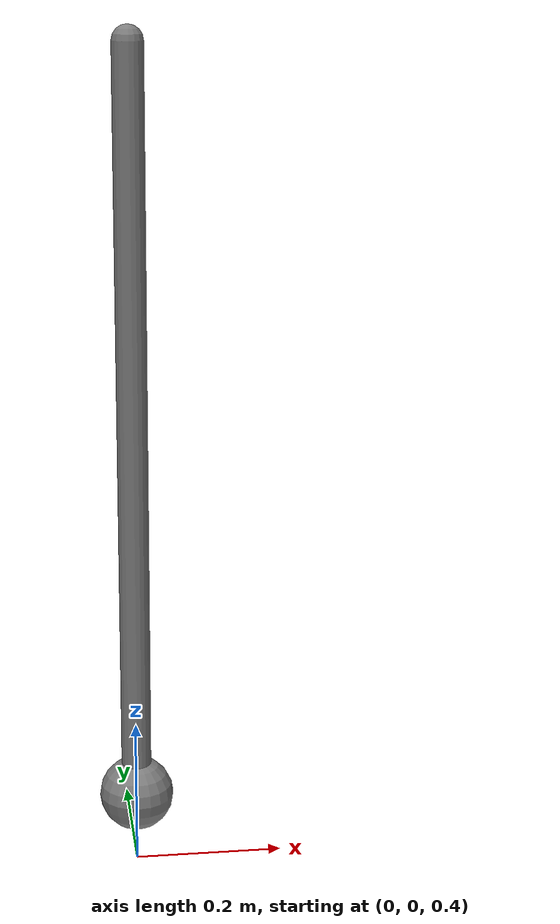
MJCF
<mujoco model="pendulum_scene">
  <include file="pendulum_model.xml"/>

  <statistic center="0 0 0.1" extent="0.8"/>

  <visual>
    <headlight diffuse="0.6 0.6 0.6" ambient="0.3 0.3 0.3" specular="0 0 0"/>
    <rgba haze="0.15 0.25 0.35 1"/>
    <global azimuth="-130" elevation="-20"/>
  </visual>

  <asset>
    <texture type="skybox" builtin="gradient" rgb1="0.3 0.5 0.7" rgb2="0 0 0" width="512" height="3072"/>
    <texture type="2d" name="groundplane" builtin="checker" mark="edge" rgb1="0.2 0.3 0.4" rgb2="0.1 0.2 0.3"
      markrgb="0.8 0.8 0.8" width="300" height="300"/>
    <material name="groundplane" texture="groundplane" texuniform="true" texrepeat="5 5" reflectance="0.2"/>
  </asset>

  <worldbody>
    <light pos="0 0 1.5" dir="0 0 -1" directional="true"/>
    <geom name="floor" size="0 0 0.05" type="plane" material="groundplane"/>
    <camera name="default" pos="2 0 5" xyaxes="0 1 0 0 0 1"/>
  </worldbody>
</mujoco>

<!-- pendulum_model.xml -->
<mujoco model="pendulum">
    <compiler angle="radian" autolimits="true"/>

    <default>
        <default class="pendulum">
            <geom type="capsule" size="0.02" rgba="0.1 0.2 0.8 1"/>
            <joint axis="0 1 0" damping="0.1" armature="0.01"/>
        </default>
    </default>

    <keyframe>
        <key name="0" qpos="1" />
    </keyframe>

    <worldbody>
        <!-- Fixed base -->
        <body name="base" pos="0 0 1.5">
            <!-- Pendulum arm -->
            <body name="pendulum" pos="0 0 0">
                <joint name="hinge" type="hinge" axis="0 1 0" pos="0 0 0"/>
                <geom name="arm" type="capsule" fromto="0 0 0 0 0 -1" size="0.02"/>
                <!-- Point mass at the tip -->
                <body name="mass" pos="0 0 -1">
                    <geom name="tip_mass" type="sphere" size="0.05" density="1000"/>
                </body>
            </body>
        </body>
    </worldbody>

    <actuator>
        <motor name = "hinge_motor" joint="hinge" ctrlrange="-100 100" gear="1"/>
    </actuator>

    <sensor>
        <jointpos name="qjpos" joint="hinge"/>
        <jointvel name="qjvel" joint="hinge"/>
        <jointactuatorfrc name="qjtau" joint="hinge"/>
    </sensor>
</mujoco>
